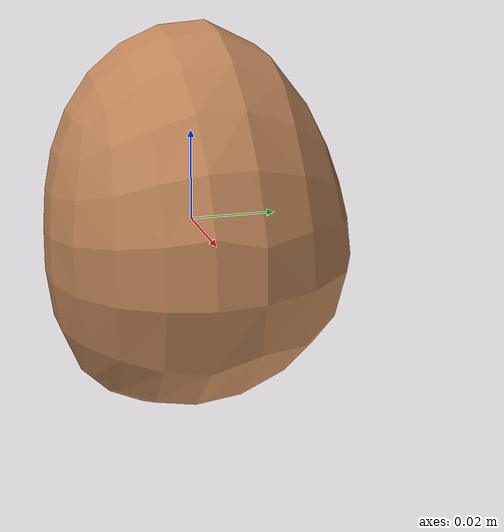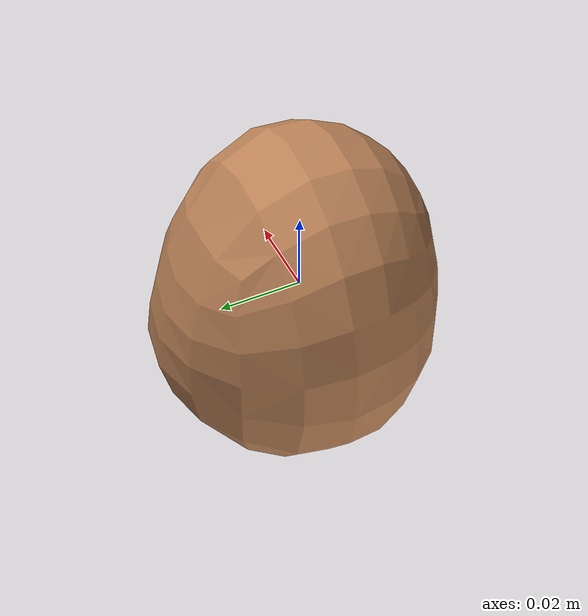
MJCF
<mujoco model="Potato_28">
  <compiler autolimits="true" boundmass="0.01" angle="radian"/>
  <default>
    <default class="/">
      <default class="__VISUAL_MJT__">
        <geom contype="0" conaffinity="0" group="0"/>
      </default>
      <default class="__STRUCTURAL_MJT__">
        <geom contype="8" conaffinity="15" group="4" friction="0.90000000000000002 0.90000000000000002 0.001" solref="0.025000000000000001 1" solimp="0.998 0.998 0.001"/>
      </default>
      <default class="__DYNAMIC_MJT__">
        <geom contype="1" conaffinity="15" group="4" friction="0.90000000000000002 0.90000000000000002 0.001" solref="0.025000000000000001 1" solimp="0.998 0.998 0.001"/>
      </default>
    </default>
  </default>
  <asset>
    <texture name="Potato3_Mat3" type="2d" file="Potato3_AlbedoTransparency.png"/>
    <material name="material_Potato3_Mat3" class="/" texture="Potato3_Mat3" specular="0.5" shininess="0.5" rgba="1 0.72555780000000003 0.51470590000000005 1"/>
    <mesh name="Potato_28_potato_c8" class="/" file="Potato_28_potato_c8/Potato_28_potato_c8.obj" scale="1 1 1"/>
  </asset>
  <worldbody>
    <body name="Potato_28">
      <joint name="Potato_28_free" class="/" type="free" pos="0 0 0" axis="0 0 1" stiffness="0" range="0 0" armature="0" damping="0.10000000000000001" frictionloss="0"/>
      <body name="Potato_28_potato_c8" pos="-0.00018000000000000001 -0.00068000000000000005 -0.0095600001981854445" quat="1 0 0 0">
        <geom name="Potato_28_potato_c8" class="__VISUAL_MJT__" type="mesh" material="material_Potato3_Mat3" shellinertia="true" mesh="Potato_28_potato_c8"/>
        <geom name="Potato_28_PrimitiveCollider_0" class="__DYNAMIC_MJT__" type="capsule" size="0.036108288913965225 0.0055997036397457123" rgba="0 1 0 1" pos="-0.00018432736396789551 0.00068081705830991268 -0.00074029166717082262" quat="1.4751396609986736e-06 0.99999999999891198 0 0"/>
      </body>
    </body>
  </worldbody>
</mujoco>
